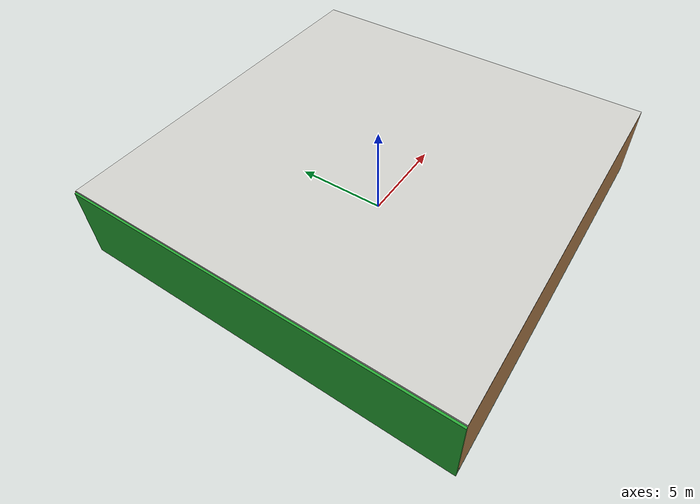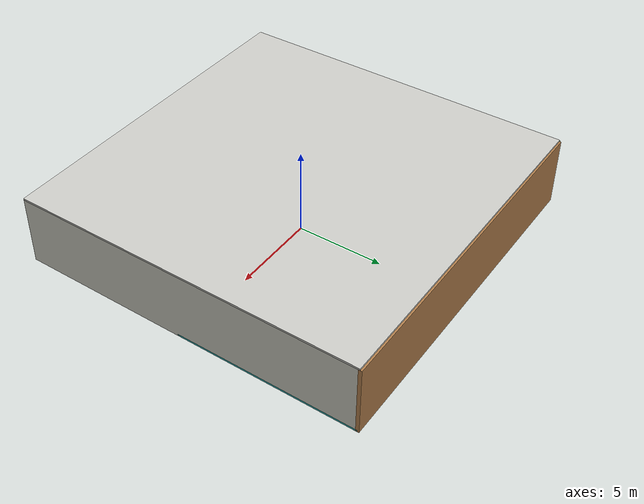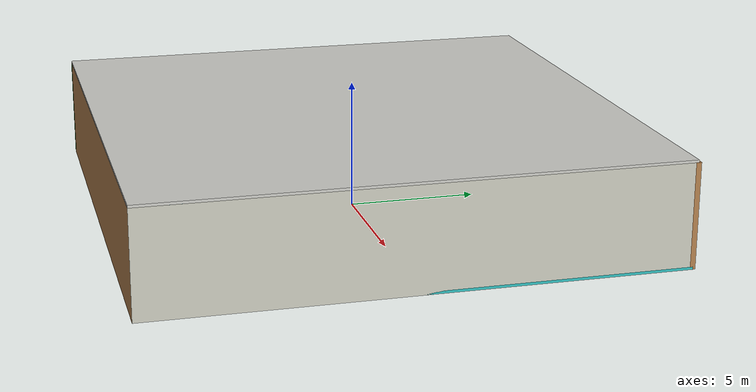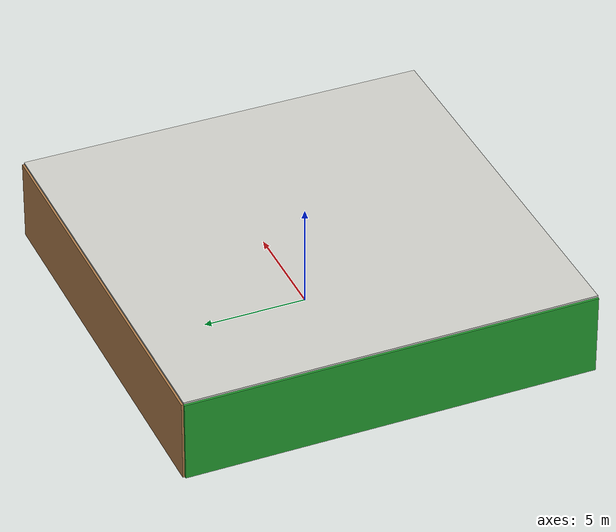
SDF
<sdf version="1.4">
 <world name="default">
  <physics type="ode">
   <max_step_size>0.001</max_step_size>
   <real_time_factor>1</real_time_factor>
   <real_time_update_rate>1000</real_time_update_rate>
   <gravity>0 0 -9.8</gravity>
  </physics>
  <scene><ambient>0.4 0.4 0.4 1</ambient><background>0.7 0.7 0.7 1</background><shadows>1</shadows></scene>
  <model name="Surrounding">
   <static>1</static>
   <link name="Ceiling">
    <collision name="Ceiling_Collision"><geometry><box><size>20 20 0.1</size></box></geometry></collision>
    <visual name="Ceiling_Visual">
     <geometry><box><size>20 20 0.1</size></box></geometry>
     <material>
      <script><uri>file://media/materials/scripts/gazebo.material</uri><name>Gazebo/CeilingTiled</name></script>
     </material>
    </visual>
    <pose>0 0 4.05 0 0 0</pose>
   </link>
   <link name="Wall_South">
    <collision name="Wall_South_Collision">
     <geometry><box><size>20 0 4</size></box></geometry>
     <pose>0 0 2 0 -0 0</pose>
    </collision>
    <visual name="Wall_South_Visual">
     <pose>0 0 2 0 -0 0</pose>
     <geometry><box><size>20 0 4</size></box></geometry>
     <material>
      <script><uri>file://media/materials/scripts/gazebo.material</uri><name>Gazebo/WoodFloor</name></script>
     </material>
    </visual>
    <velocity_decay><linear>0</linear><angular>0</angular></velocity_decay>
    <pose>0 -10 0 0 -0 0</pose>
   </link>
   <link name="Wall_East">
    <collision name="Wall_21_Collision">
     <geometry><box><size>20 0 4</size></box></geometry>
     <pose>0 0 2 0 -0 0</pose>
    </collision>
    <visual name="Wall_21_Visual">
     <pose>0 0 2 0 -0 0</pose>
     <geometry><box><size>20 0 4</size></box></geometry>
     <material>
      <script><uri>file://media/materials/scripts/gazebo.material</uri><name>Gazebo/PaintedWall</name></script>
     </material>
    </visual>
    <velocity_decay><linear>0</linear><angular>0</angular></velocity_decay>
    <pose>10 0 0 0 -0 1.5708</pose>
   </link>
   <link name="Wall_North">
    <collision name="Wall_22_Collision">
     <geometry><box><size>20 0.2 4</size></box></geometry>
     <pose>0 0 2 0 -0 0</pose>
    </collision>
    <visual name="Wall_22_Visual">
     <pose>0 0 2 0 -0 0</pose>
     <geometry><box><size>20 0.2 4</size></box></geometry>
     <material>
      <script><uri>file://media/materials/scripts/gazebo.material</uri><name>Gazebo/WoodFloor</name></script>
     </material>
    </visual>
    <velocity_decay><linear>0</linear><angular>0</angular></velocity_decay>
    <pose>0 10 0 0 -0 0</pose>
   </link>
   <link name="Wall_West">
    <collision name="Wall_23_Collision">
     <geometry><box><size>20 0.2 4</size></box></geometry>
     <pose>0 0 2 0 -0 0</pose>
    </collision>
    <visual name="Wall_23_Visual">
     <pose>0 0 2 0 -0 0</pose>
     <geometry><box><size>20 0.2 4</size></box></geometry>
     <material>
      <script><uri>file://media/materials/scripts/gazebo.material</uri><name>Gazebo/GreenGlow</name></script>
     </material>
    </visual>
    <velocity_decay><linear>0</linear><angular>0</angular></velocity_decay>
    <pose>-10 0 0 0 0 -1.5708</pose>
   </link>
   <link name="Ground_link">
    <collision name="collision">
     <pose>0 0 .05 0 -0 0</pose>
     <geometry><box><size>20 20 0.1</size></box></geometry>
    </collision>
    <visual name="visual">
     <pose>0 0 .05 0 -0 0</pose>
     <geometry><box><size>20 20 0.1</size></box></geometry>
     <material>
      <script><uri>file://media/materials/scripts/gazebo.material</uri><name>Gazebo/TurquoiseGlow</name></script>
     </material>
    </visual>
   </link>
   <static>1</static>
  </model>
  <spherical_coordinates>
   <surface_model>EARTH_WGS84</surface_model>
   <latitude_deg>0</latitude_deg>
   <longitude_deg>0</longitude_deg>
   <elevation>0</elevation>
   <heading_deg>0</heading_deg>
  </spherical_coordinates>
  <light name="lightball_0" type="diffuse">
   <diffuse>0.8 0.8 0.8 1</diffuse>
   <specular>0.2 0.2 0.2 1</specular>
   <attenuation>
    <range>100</range>
    <constant>0.7</constant>
    <linear>0.01</linear>
    <quadratic>0.001</quadratic>
   </attenuation>
   <direction>-0.5 0.1 -0.9</direction>
   <pose>-7.00121595951 -2.17787860197 1.1858607915 0 0 0</pose>
  </light>
  <light name="lightball_1" type="diffuse">
   <diffuse>0.8 0.8 0.8 1</diffuse>
   <specular>0.2 0.2 0.2 1</specular>
   <attenuation>
    <range>100</range>
    <constant>0.7</constant>
    <linear>0.01</linear>
    <quadratic>0.001</quadratic>
   </attenuation>
   <direction>-0.5 0.1 -0.9</direction>
   <pose>3.29181337328 6.50532895628 2.91372409033 0 0 0</pose>
  </light>
  <light name="lightball_2" type="diffuse">
   <diffuse>0.8 0.8 0.8 1</diffuse>
   <specular>0.2 0.2 0.2 1</specular>
   <attenuation>
    <range>100</range>
    <constant>0.7</constant>
    <linear>0.01</linear>
    <quadratic>0.001</quadratic>
   </attenuation>
   <direction>-0.5 0.1 -0.9</direction>
   <pose>-7.29317389823 -1.49306278645 3.07695207377 0 0 0</pose>
  </light>
  <light name="lightball_3" type="diffuse">
   <diffuse>0.8 0.8 0.8 1</diffuse>
   <specular>0.2 0.2 0.2 1</specular>
   <attenuation>
    <range>100</range>
    <constant>0.7</constant>
    <linear>0.01</linear>
    <quadratic>0.001</quadratic>
   </attenuation>
   <direction>-0.5 0.1 -0.9</direction>
   <pose>-8.14606386587 -3.38744236991 1.44222616853 0 0 0</pose>
  </light>
  <light name="lightball_4" type="diffuse">
   <diffuse>0.8 0.8 0.8 1</diffuse>
   <specular>0.2 0.2 0.2 1</specular>
   <attenuation>
    <range>100</range>
    <constant>0.7</constant>
    <linear>0.01</linear>
    <quadratic>0.001</quadratic>
   </attenuation>
   <direction>-0.5 0.1 -0.9</direction>
   <pose>8.19120166491 8.75935773479 3.55379366915 0 0 0</pose>
  </light>
  <light name="lightball_5" type="diffuse">
   <diffuse>0.8 0.8 0.8 1</diffuse>
   <specular>0.2 0.2 0.2 1</specular>
   <attenuation>
    <range>100</range>
    <constant>0.7</constant>
    <linear>0.01</linear>
    <quadratic>0.001</quadratic>
   </attenuation>
   <direction>-0.5 0.1 -0.9</direction>
   <pose>6.95976495979 -3.26855956638 2.67126581377 0 0 0</pose>
  </light>
  <light name="lightball_6" type="diffuse">
   <diffuse>0.8 0.8 0.8 1</diffuse>
   <specular>0.2 0.2 0.2 1</specular>
   <attenuation>
    <range>100</range>
    <constant>0.7</constant>
    <linear>0.01</linear>
    <quadratic>0.001</quadratic>
   </attenuation>
   <direction>-0.5 0.1 -0.9</direction>
   <pose>6.26525968075 -1.12882496264 2.06831597302 0 0 0</pose>
  </light>
  <light name="lightball_7" type="diffuse">
   <diffuse>0.8 0.8 0.8 1</diffuse>
   <specular>0.2 0.2 0.2 1</specular>
   <attenuation>
    <range>100</range>
    <constant>0.7</constant>
    <linear>0.01</linear>
    <quadratic>0.001</quadratic>
   </attenuation>
   <direction>-0.5 0.1 -0.9</direction>
   <pose>2.7196129941 -6.69560158629 0.991004750496 0 0 0</pose>
  </light>
  <light name="lightball_8" type="diffuse">
   <diffuse>0.8 0.8 0.8 1</diffuse>
   <specular>0.2 0.2 0.2 1</specular>
   <attenuation>
    <range>100</range>
    <constant>0.7</constant>
    <linear>0.01</linear>
    <quadratic>0.001</quadratic>
   </attenuation>
   <direction>-0.5 0.1 -0.9</direction>
   <pose>5.26214497017 -5.93166004954 3.77988881887 0 0 0</pose>
  </light>
  <light name="lightball_9" type="diffuse">
   <diffuse>0.8 0.8 0.8 1</diffuse>
   <specular>0.2 0.2 0.2 1</specular>
   <attenuation>
    <range>100</range>
    <constant>0.7</constant>
    <linear>0.01</linear>
    <quadratic>0.001</quadratic>
   </attenuation>
   <direction>-0.5 0.1 -0.9</direction>
   <pose>-8.63573548461 -1.28249039974 1.65588130978 0 0 0</pose>
  </light>
  <include><uri>model://cabinet</uri><pose>-6.97746407493 7.4167164139 0 0 0 2.2698895052</pose></include>
  <include>
   <uri>model://robocup_3Dsim_goal</uri>
   <pose>-3.78410140993 -5.27492070459 0 0 0 2.04371406098</pose>
  </include>
  <include>
   <uri>model://textured_shapes</uri>
   <pose>-0.909747444426 6.57439933506 0 0 0 2.63472909551</pose>
  </include>
  <include>
   <uri>model://textured_shapes</uri>
   <pose>1.9156855362 -4.30291842702 0 0 0 0.449239125978</pose>
  </include>
  <include>
   <uri>model://construction_cone</uri>
   <pose>4.11650671479 -7.07594715995 0 0 0 0.58424118131</pose>
  </include>
  <include>
   <uri>model://textured_shapes</uri>
   <pose>4.49841510653 -5.40537145624 0 0 0 2.17499443652</pose>
  </include>
  <include><uri>model://table</uri><pose>6.785480566 -6.88068786189 0 0 0 2.6058254015</pose></include>
 </world>
</sdf>

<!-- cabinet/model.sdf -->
<sdf version="1.5">
  <model name="cabinet">
    <static>true</static>
    <link name="cabinet_bottom_plate">
      <inertial>
        <pose>0 0 -1 0 0 0</pose>
        <inertia>
          <ixx>2.050000</ixx>
          <ixy>0</ixy>
          <ixz>0</ixz>
          <iyy>2.050000</iyy>
          <iyz>0</iyz>
          <izz>2.050000</izz>
        </inertia>
        <mass>25.000000</mass>
      </inertial>
      <collision name="cabinet_bottom_plate_geom">
        <pose>0 0 0.010000 0 0 0</pose>
        <geometry>
          <box>
            <size>0.450000 0.450000 0.020000</size>
          </box>
        </geometry>
      </collision>
      <visual name="cabinet_bottom_plate_geom_visual">
        <pose>0 0 0.010000 0 0 0</pose>
        <geometry>
          <box>
            <size>0.450000 0.450000 0.020000</size>
          </box>
        </geometry>
        <material>
          <script>
            <uri>model://media/materials/scripts/gazebo.material</uri>
            <name>Gazebo/Wood</name>
          </script>
        </material>
      </visual>
      <collision name="cabinet_bottom_plate_geom_cabinet_back_plate">
        <pose>0.235000 0 0.510000 0 0 0</pose>
        <geometry>
          <box>
            <size>0.020000 0.450000 1.020000</size>
          </box>
        </geometry>
      </collision>
      <visual name="cabinet_bottom_plate_geom_cabinet_back_plate_visual">
        <pose>0.235000 0 0.510000 0 0 0</pose>
        <geometry>
          <box>
            <size>0.020000 0.450000 1.020000</size>
          </box>
        </geometry>
        <material>
          <script>
            <uri>model://media/materials/scripts/gazebo.material</uri>
            <name>Gazebo/Wood</name>
          </script>
        </material>
      </visual>
      <collision name="cabinet_bottom_plate_geom_cabinet_left_plate">
        <pose>0 0.235000 0.510000 0 0 0</pose>
        <geometry>
          <box>
            <size>0.450000 0.020000 1.020000</size>
          </box>
        </geometry>
      </collision>
      <visual name="cabinet_bottom_plate_geom_cabinet_left_plate_visual">
        <pose>0 0.235000 0.510000 0 0 0</pose>
        <geometry>
          <box>
            <size>0.450000 0.020000 1.020000</size>
          </box>
        </geometry>
        <material>
          <script>
            <uri>model://media/materials/scripts/gazebo.material</uri>
            <name>Gazebo/Wood</name>
          </script>
        </material>
      </visual>
      <collision name="cabinet_bottom_plate_geom_cabinet_middle_plate">
        <pose>0 0 0.510000 0 0 0</pose>
        <geometry>
          <box>
            <size>0.450000 0.450000 0.020000</size>
          </box>
        </geometry>
      </collision>
      <visual name="cabinet_bottom_plate_geom_cabinet_middle_plate_visual">
        <pose>0 0 0.510000 0 0 0</pose>
        <geometry>
          <box>
            <size>0.450000 0.450000 0.020000</size>
          </box>
        </geometry>
        <material>
          <script>
            <uri>model://media/materials/scripts/gazebo.material</uri>
            <name>Gazebo/Wood</name>
          </script>
        </material>
      </visual>
      <collision name="cabinet_bottom_plate_geom_cabinet_right_plate">
        <pose>0 -0.235000 0.510000 0 0 0</pose>
        <geometry>
          <box>
            <size>0.450000 0.020000 1.020000</size>
          </box>
        </geometry>
      </collision>
      <visual name="cabinet_bottom_plate_geom_cabinet_right_plate_visual">
        <pose>0 -0.235000 0.510000 0 0 0</pose>
        <geometry>
          <box>
            <size>0.450000 0.020000 1.020000</size>
          </box>
        </geometry>
        <material>
          <script>
            <uri>model://media/materials/scripts/gazebo.material</uri>
            <name>Gazebo/Wood</name>
          </script>
        </material>
      </visual>
      <collision name="cabinet_bottom_plate_geom_cabinet_top_plate">
        <pose>0 0 1.010000 0 0 0</pose>
        <geometry>
          <box>
            <size>0.450000 0.450000 0.020000</size>
          </box>
        </geometry>
      </collision>
      <visual name="cabinet_bottom_plate_geom_cabinet_top_plate_visual">
        <pose>0 0 1.010000 0 0 0</pose>
        <geometry>
          <box>
            <size>0.450000 0.450000 0.020000</size>
          </box>
        </geometry>
        <material>
          <script>
            <uri>model://media/materials/scripts/gazebo.material</uri>
            <name>Gazebo/Wood</name>
          </script>
        </material>
      </visual>
    </link>
  </model>
</sdf>

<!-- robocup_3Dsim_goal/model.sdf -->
<sdf version="1.5">
  <model name="robocup_3d_goal">
    <static>true</static>
    <link name="left_post">
      <pose>0 1.05 0.45 0 0 0</pose>
      <collision name="collision">
        <geometry>
          <cylinder>
            <radius>0.05</radius>
            <length>0.9</length>
          </cylinder>
        </geometry>
      </collision>
      <visual name="visual">
        <geometry>
          <cylinder>
            <radius>0.05</radius>
            <length>0.9</length>
          </cylinder>
        </geometry>
        <material>
          <script>
            <uri>file://media/materials/scripts/gazebo.material</uri>
            <name>Gazebo/ZincYellow</name>
          </script>
        </material>
      </visual>
    </link>
    <link name="left_support_horiz_lower">
      <pose>0.30 1.05 0.01 0 0 0</pose>
      <collision name="collision">
        <geometry>
          <box>
            <size>0.50 0.02 0.02</size>
          </box>
        </geometry>
      </collision>
      <visual name="visual">
        <geometry>
          <box>
            <size>0.50 0.02 0.02</size>
          </box>
        </geometry>
        <material>
          <script>
            <uri>file://media/materials/scripts/gazebo.material</uri>
            <name>Gazebo/White</name>
          </script>
        </material>
      </visual>
    </link>
    <link name="left_support_horiz_upper">
      <pose>0.30 1.05 0.79 0 0 0</pose>
      <collision name="collision">
        <geometry>
          <box>
            <size>0.50 0.02 0.02</size>
          </box>
        </geometry>
      </collision>
      <visual name="visual">
        <geometry>
          <box>
            <size>0.50 0.02 0.02</size>
          </box>
        </geometry>
        <material>
          <script>
            <uri>file://media/materials/scripts/gazebo.material</uri>
            <name>Gazebo/White</name>
          </script>
        </material>
      </visual>
    </link>
    <link name="left_support_vertical">
      <pose>0.56 1.05 0.4 0 1.5708 0</pose>
      <collision name="collision">
        <geometry>
          <box>
            <size>0.80 0.02 0.02</size>
          </box>
        </geometry>
      </collision>
      <visual name="visual">
        <geometry>
          <box>
            <size>0.80 0.02 0.02</size>
          </box>
        </geometry>
        <material>
          <script>
            <uri>file://media/materials/scripts/gazebo.material</uri>
            <name>Gazebo/White</name>
          </script>
        </material>
      </visual>
    </link>
    <link name="right_support_horiz_lower">
      <pose>0.30 -1.05 0.01 0 0 0</pose>
      <collision name="collision">
        <geometry>
          <box>
            <size>0.50 0.02 0.02</size>
          </box>
        </geometry>
      </collision>
      <visual name="visual">
        <geometry>
          <box>
            <size>0.50 0.02 0.02</size>
          </box>
        </geometry>
        <material>
          <script>
            <uri>file://media/materials/scripts/gazebo.material</uri>
            <name>Gazebo/White</name>
          </script>
        </material>
      </visual>
    </link>
    <link name="right_support_horiz_upper">
      <pose>0.30 -1.05 0.79 0 0 0</pose>
      <collision name="collision">
        <geometry>
          <box>
            <size>0.50 0.02 0.02</size>
          </box>
        </geometry>
      </collision>
      <visual name="visual">
        <geometry>
          <box>
            <size>0.50 0.02 0.02</size>
          </box>
        </geometry>
        <material>
          <script>
            <uri>file://media/materials/scripts/gazebo.material</uri>
            <name>Gazebo/White</name>
          </script>
        </material>
      </visual>
    </link>
    <link name="right_support_vertical">
      <pose>0.56 -1.05 0.4 0 1.5708 0</pose>
      <collision name="collision">
        <geometry>
          <box>
            <size>0.80 0.02 0.02</size>
          </box>
        </geometry>
      </collision>
      <visual name="visual">
        <geometry>
          <box>
            <size>0.80 0.02 0.02</size>
          </box>
        </geometry>
        <material>
          <script>
            <uri>file://media/materials/scripts/gazebo.material</uri>
            <name>Gazebo/White</name>
          </script>
        </material>
      </visual>
    </link>
    <link name="center_support_horiz_lower">
      <pose>0.56 0 0.01 0 1.5708 0</pose>
      <collision name="collision">
        <geometry>
          <box>
            <size>0.02 2.08 0.02</size>
          </box>
        </geometry>
      </collision>
      <visual name="visual">
        <geometry>
          <box>
            <size>0.02 2.08 0.02</size>
          </box>
        </geometry>
        <material>
          <script>
            <uri>file://media/materials/scripts/gazebo.material</uri>
            <name>Gazebo/White</name>
          </script>
        </material>
      </visual>
    </link>
    <link name="center_support_horiz_upper">
      <pose>0.56 0 0.79 0 1.5708 0</pose>
      <collision name="collision">
        <geometry>
          <box>
            <size>0.02 2.08 0.02</size>
          </box>
        </geometry>
      </collision>
      <visual name="visual">
        <geometry>
          <box>
            <size>0.02 2.08 0.02</size>
          </box>
        </geometry>
        <material>
          <script>
            <uri>file://media/materials/scripts/gazebo.material</uri>
            <name>Gazebo/White</name>
          </script>
        </material>
      </visual>
    </link>
    <link name="right_post">
      <pose>0 -1.05 0.45 0 0 0</pose>
      <collision name="collision">
        <geometry>
          <cylinder>
            <radius>0.05</radius>
            <length>0.9</length>
          </cylinder>
        </geometry>
      </collision>
      <visual name="visual">
        <geometry>
          <cylinder>
            <radius>0.05</radius>
            <length>0.9</length>
          </cylinder>
        </geometry>
        <material>
          <script>
            <uri>file://media/materials/scripts/gazebo.material</uri>
            <name>Gazebo/ZincYellow</name>
          </script>
        </material>
      </visual>
    </link>
    <link name="crossbar">
      <pose>0 0 0.85 1.57 1.57 0</pose>
      <collision name="collision">
        <geometry>
          <cylinder>
            <radius>0.05</radius>
            <length>2.0</length>
          </cylinder>
        </geometry>
      </collision>
      <visual name="visual">
        <geometry>
          <cylinder>
            <radius>0.05</radius>
            <length>2.0</length>
          </cylinder>
        </geometry>
        <material>
          <script>
            <uri>file://media/materials/scripts/gazebo.material</uri>
            <name>Gazebo/ZincYellow</name>
          </script>
        </material>
      </visual>
    </link>
    <link name="center_net">
      <pose>0.56 0 0.40 0 0 0</pose>
      <collision name="collision">
        <geometry>
          <box>
            <size>0.01 2.1 0.80</size>
          </box>
        </geometry>
      </collision>
      <visual name="visual">
        <geometry>
          <box>
            <size>0.01 2.1 0.80</size>
          </box>
        </geometry>
        <material>
          <script>
            <uri>model://../model_source/models/robocup09_spl_field/materials/scripts/</uri>
            <uri>model://../model_source/models/robocup09_spl_field/materials/textures/</uri>
            <name>RoboCup/Net</name>
          </script>
        </material>
      </visual>
    </link>
    <link name="left_net">
      <pose>0.30 1.05 0.40 0 0 0</pose>
      <collision name="collision">
        <geometry>
          <box>
            <size>0.50 0.01 0.76</size>
          </box>
        </geometry>
      </collision>
      <visual name="visual">
        <geometry>
          <box>
            <size>0.50 0.01 0.76</size>
          </box>
        </geometry>
        <material>
          <script>
            <uri>model://../model_source/models/robocup09_spl_field/materials/scripts/</uri>
            <uri>model://../model_source/models/robocup09_spl_field/materials/textures/</uri>
            <name>RoboCup/Net</name>
          </script>
        </material>
      </visual>
    </link>
    <link name="right_net">
      <pose>0.30 -1.05 0.40 0 0 0</pose>
      <collision name="collision">
        <geometry>
          <box>
            <size>0.50 0.01 0.76</size>
          </box>
        </geometry>
      </collision>
      <visual name="visual">
        <geometry>
          <box>
            <size>0.50 0.01 0.76</size>
          </box>
        </geometry>
        <material>
          <script>
            <uri>model://../model_source/models/robocup09_spl_field/materials/scripts/</uri>
            <uri>model://../model_source/models/robocup09_spl_field/materials/textures/</uri>
            <name>RoboCup/Net</name>
          </script>
        </material>
      </visual>
    </link>
  </model>
</sdf>

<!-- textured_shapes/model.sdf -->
<sdf version="1.6">
  <model name="textured_shapes">
    <pose>0 0 0.5 0 0 0</pose>
    <link name="box">
      <pose>0 -1.5 0 0 0 0</pose>
      <collision name="collision">
        <geometry>
          <box>
            <size>1 1 1</size>
          </box>
        </geometry>
      </collision>
      <visual name="visual">
        <geometry>
          <box>
            <size>1 1 1</size>
          </box>
        </geometry>
        <material>
          <script>
            <uri>model://../model_source/models/textured_shapes/materials/scripts</uri>
            <uri>model://../model_source/models/textured_shapes/materials/textures</uri>
            <name>TexturedShape/Squares</name>
          </script>
        </material>
      </visual>
    </link>
    <link name="sphere">
      <collision name="collision">
        <geometry>
          <sphere>
            <radius>0.5</radius>
          </sphere>
        </geometry>
      </collision>
      <visual name="visual">
        <geometry>
          <sphere>
            <radius>0.5</radius>
          </sphere>
        </geometry>
        <material>
          <script>
            <uri>model://../model_source/models/textured_shapes/materials/scripts</uri>
            <uri>model://../model_source/models/textured_shapes/materials/textures</uri>
            <name>TexturedShape/Squares</name>
          </script>
        </material>
      </visual>
    </link>
    <link name="cylinder">
      <pose>0 1.5 0 0 0 0</pose>
      <collision name="collision">
        <geometry>
          <cylinder>
            <radius>0.5</radius>
            <length>1</length>
          </cylinder>
        </geometry>
      </collision>
      <visual name="visual">
        <geometry>
          <cylinder>
            <radius>0.5</radius>
            <length>1</length>
          </cylinder>
        </geometry>
        <material>
          <script>
            <uri>model://../model_source/models/textured_shapes/materials/scripts</uri>
            <uri>model://../model_source/models/textured_shapes/materials/textures</uri>
            <name>TexturedShape/Squares</name>
          </script>
        </material>
      </visual>
    </link>
  </model>
</sdf>

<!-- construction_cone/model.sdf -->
<sdf version="1.5">
  <model name="Construction Cone">
    <link name="link">
      <collision name="collision">
        <geometry>
          <mesh>
            <scale>10 10 10</scale>
            <uri>file://isr-testbed/construction_cone/meshes/construction_cone.dae</uri>
          </mesh>
        </geometry>
      </collision>
      <visual name="visual">
        <geometry>
          <mesh>
            <scale>10 10 10</scale>
            <uri>file://isr-testbed/construction_cone/meshes/construction_cone.dae</uri>
          </mesh>
        </geometry>
      </visual>
    </link>
  </model>
</sdf>

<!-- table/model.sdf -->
<sdf version="1.5">
  <model name="table">
    <static>true</static>
    <link name="link">
      <collision name="surface">
        <pose>0 0 1.0 0 0 0</pose>
        <geometry>
          <box>
            <size>1.5 0.8 0.03</size>
          </box>
        </geometry>
        <surface>
          <friction>
            <ode>
              <mu>0.6</mu>
              <mu2>0.6</mu2>
            </ode>
          </friction>
        </surface>
      </collision>
      <visual name="visual1">
        <pose>0 0 1.0 0 0 0</pose>
        <geometry>
          <box>
            <size>1.5 0.8 0.03</size>
          </box>
        </geometry>
        <material>
          <script>
            <uri>model://media/materials/scripts/gazebo.material</uri>
            <name>Gazebo/Wood</name>
          </script>
        </material>
      </visual>
      <collision name="front_left_leg">
        <pose>0.68 0.38 0.5 0 0 0</pose>
        <geometry>
          <cylinder>
            <radius>0.02</radius>
            <length>1.0</length>
          </cylinder>
        </geometry>
      </collision>
      <visual name="front_left_leg">
        <pose>0.68 0.38 0.5 0 0 0</pose>
        <geometry>
          <cylinder>
            <radius>0.02</radius>
            <length>1.0</length>
          </cylinder>
        </geometry>
        <material>
          <script>
            <uri>model://media/materials/scripts/gazebo.material</uri>
            <name>Gazebo/Grey</name>
          </script>
        </material>
      </visual>
      <collision name="front_right_leg">
        <pose>0.68 -0.38 0.5 0 0 0</pose>
        <geometry>
          <cylinder>
            <radius>0.02</radius>
            <length>1.0</length>
          </cylinder>
        </geometry>
      </collision>
      <visual name="front_right_leg">
        <pose>0.68 -0.38 0.5 0 0 0</pose>
        <geometry>
          <cylinder>
            <radius>0.02</radius>
            <length>1.0</length>
          </cylinder>
        </geometry>
        <material>
          <script>
            <uri>model://media/materials/scripts/gazebo.material</uri>
            <name>Gazebo/Grey</name>
          </script>
        </material>
      </visual>
      <collision name="back_right_leg">
        <pose>-0.68 -0.38 0.5 0 0 0</pose>
        <geometry>
          <cylinder>
            <radius>0.02</radius>
            <length>1.0</length>
          </cylinder>
        </geometry>
      </collision>
      <visual name="back_right_leg">
        <pose>-0.68 -0.38 0.5 0 0 0</pose>
        <geometry>
          <cylinder>
            <radius>0.02</radius>
            <length>1.0</length>
          </cylinder>
        </geometry>
        <material>
          <script>
            <uri>model://media/materials/scripts/gazebo.material</uri>
            <name>Gazebo/Grey</name>
          </script>
        </material>
      </visual>
      <collision name="back_left_leg">
        <pose>-0.68 0.38 0.5 0 0 0</pose>
        <geometry>
          <cylinder>
            <radius>0.02</radius>
            <length>1.0</length>
          </cylinder>
        </geometry>
      </collision>
      <visual name="back_left_leg">
        <pose>-0.68 0.38 0.5 0 0 0</pose>
        <geometry>
          <cylinder>
            <radius>0.02</radius>
            <length>1.0</length>
          </cylinder>
        </geometry>
        <material>
          <script>
            <uri>model://media/materials/scripts/gazebo.material</uri>
            <name>Gazebo/Grey</name>
          </script>
        </material>
      </visual>
    </link>
  </model>
</sdf>
